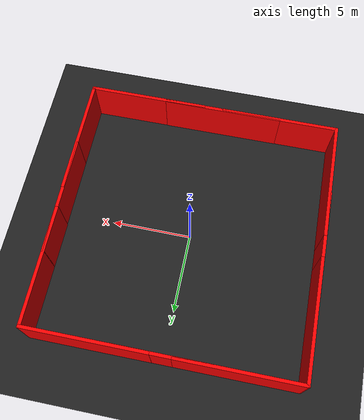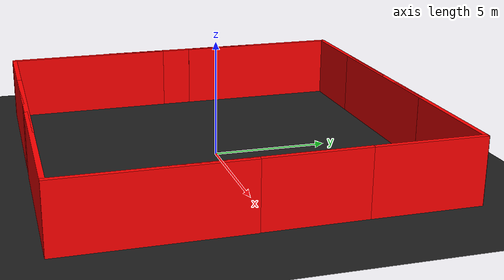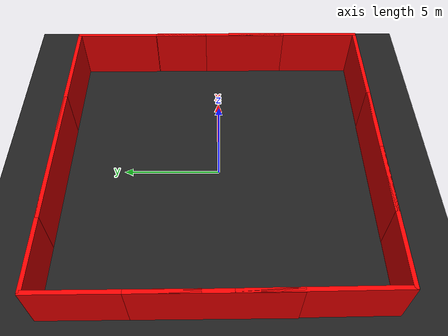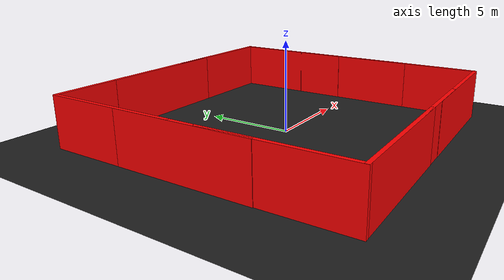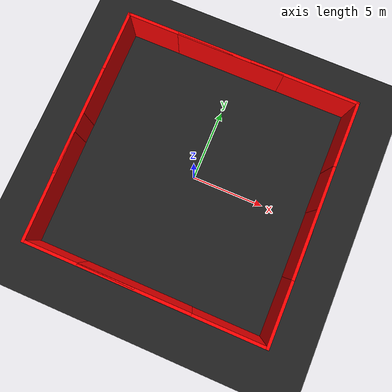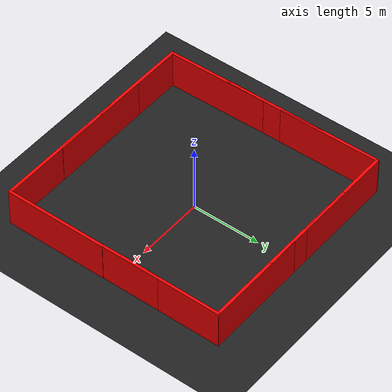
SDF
<sdf version="1.4">
 <world name="default">
  <light name="sun" type="directional">
   <pose>0 0 10 0 -0 0</pose>
   <diffuse>0.8 0.8 0.8 1</diffuse>
   <specular>0.2 0.2 0.2 1</specular>
   <attenuation>
    <range>1000</range>
    <constant>0.9</constant>
    <linear>0.01</linear>
    <quadratic>0.001</quadratic>
   </attenuation>
   <direction>-0.5 0.1 -0.9</direction>
  </light>
  <model name="ground_plane">
   <static>1</static>
   <link name="link">
    <collision name="collision">
     <geometry><plane><normal>0 0 1</normal><size>100 100</size></plane></geometry>
     <surface><friction><ode><mu>100</mu><mu2>50</mu2></ode></friction></surface>
    </collision>
    <visual name="visual">
     <cast_shadows>0</cast_shadows>
     <geometry><plane><normal>0 0 1</normal><size>100 100</size></plane></geometry>
     <material>
      <script><uri>file://media/materials/scripts/gazebo.material</uri><name>Gazebo/Black</name></script>
     </material>
    </visual>
    <velocity_decay><linear>0</linear><angular>0</angular></velocity_decay>
   </link>
  </model>
  <physics type="ode">
   <max_step_size>0.001</max_step_size>
   <real_time_factor>1</real_time_factor>
   <real_time_update_rate>1000</real_time_update_rate>
   <gravity>0 0 -9.8</gravity>
  </physics>
  <scene><ambient>0 0 0 1</ambient><background>0 0 0 1</background><shadows>0</shadows></scene>
  <model name="grey_wall">
   <static>1</static>
   <link name="link">
    <pose>0 0 1.4 0 -0 0</pose>
    <collision name="collision"><geometry><box><size>7.5 0.2 2.8</size></box></geometry></collision>
    <visual name="visual">
     <cast_shadows>0</cast_shadows>
     <geometry><box><size>7.5 0.2 2.8</size></box></geometry>
     <material>
      <ambient>1 0 0 1</ambient>
      <diffuse>1 0 0 1</diffuse>
      <specular>1 0 0 1</specular>
      <emissive>1 0 0 1</emissive>
     </material>
    </visual>
    <velocity_decay><linear>0</linear><angular>0</angular></velocity_decay>
   </link>
   <pose>-4.3622 8.13739 0 0 -0 0</pose>
  </model>
  <model name="grey_wall_0">
   <static>1</static>
   <link name="link">
    <pose>0 0 1.4 0 -0 0</pose>
    <collision name="collision"><geometry><box><size>7.5 0.2 2.8</size></box></geometry></collision>
    <visual name="visual">
     <cast_shadows>0</cast_shadows>
     <geometry><box><size>7.5 0.2 2.8</size></box></geometry>
     <material>
      <ambient>1 0 0 1</ambient>
      <diffuse>1 0 0 1</diffuse>
      <specular>1 0 0 1</specular>
      <emissive>1 0 0 1</emissive>
     </material>
    </visual>
    <velocity_decay><linear>0</linear><angular>0</angular></velocity_decay>
   </link>
   <pose>-0.796756 8.13697 0 0 -0 0</pose>
  </model>
  <model name="grey_wall_1">
   <static>1</static>
   <link name="link">
    <pose>0 0 1.4 0 -0 0</pose>
    <collision name="collision"><geometry><box><size>7.5 0.2 2.8</size></box></geometry></collision>
    <visual name="visual">
     <cast_shadows>0</cast_shadows>
     <geometry><box><size>7.5 0.2 2.8</size></box></geometry>
     <material>
      <ambient>1 0 0 1</ambient>
      <diffuse>1 0 0 1</diffuse>
      <specular>1 0 0 1</specular>
      <emissive>1 0 0 1</emissive>
     </material>
    </visual>
    <velocity_decay><linear>0</linear><angular>0</angular></velocity_decay>
   </link>
   <pose>4.37386 8.14275 0 0 -0 0</pose>
  </model>
  <model name="grey_wall_2">
   <static>1</static>
   <link name="link">
    <pose>0 0 1.4 0 -0 0</pose>
    <collision name="collision"><geometry><box><size>7.5 0.2 2.8</size></box></geometry></collision>
    <visual name="visual">
     <cast_shadows>0</cast_shadows>
     <geometry><box><size>7.5 0.2 2.8</size></box></geometry>
     <material>
      <ambient>1 0 0 1</ambient>
      <diffuse>1 0 0 1</diffuse>
      <specular>1 0 0 1</specular>
      <emissive>1 0 0 1</emissive>
     </material>
    </visual>
    <velocity_decay><linear>0</linear><angular>0</angular></velocity_decay>
   </link>
   <pose>-4.23424 -8.02129 0 0 -0 0</pose>
  </model>
  <model name="grey_wall_3">
   <static>1</static>
   <link name="link">
    <pose>0 0 1.4 0 -0 0</pose>
    <collision name="collision"><geometry><box><size>7.5 0.2 2.8</size></box></geometry></collision>
    <visual name="visual">
     <cast_shadows>0</cast_shadows>
     <geometry><box><size>7.5 0.2 2.8</size></box></geometry>
     <material>
      <ambient>1 0 0 1</ambient>
      <diffuse>1 0 0 1</diffuse>
      <specular>1 0 0 1</specular>
      <emissive>1 0 0 1</emissive>
     </material>
    </visual>
    <velocity_decay><linear>0</linear><angular>0</angular></velocity_decay>
   </link>
   <pose>-0.524266 -8.01227 0 0 -0 0</pose>
  </model>
  <model name="grey_wall_4">
   <static>1</static>
   <link name="link">
    <pose>0 0 1.4 0 -0 0</pose>
    <collision name="collision"><geometry><box><size>7.5 0.2 2.8</size></box></geometry></collision>
    <visual name="visual">
     <cast_shadows>0</cast_shadows>
     <geometry><box><size>7.5 0.2 2.8</size></box></geometry>
     <material>
      <ambient>1 0 0 1</ambient>
      <diffuse>1 0 0 1</diffuse>
      <specular>1 0 0 1</specular>
      <emissive>1 0 0 1</emissive>
     </material>
    </visual>
    <velocity_decay><linear>0</linear><angular>0</angular></velocity_decay>
   </link>
   <pose>4.37951 -8.02528 0 0 -0 0</pose>
  </model>
  <model name="grey_wall_5">
   <static>1</static>
   <link name="link">
    <pose>0 0 1.4 0 -0 0</pose>
    <collision name="collision"><geometry><box><size>7.5 0.2 2.8</size></box></geometry></collision>
    <visual name="visual">
     <cast_shadows>0</cast_shadows>
     <geometry><box><size>7.5 0.2 2.8</size></box></geometry>
     <material>
      <ambient>1 0 0 1</ambient>
      <diffuse>1 0 0 1</diffuse>
      <specular>1 0 0 1</specular>
      <emissive>1 0 0 1</emissive>
     </material>
    </visual>
    <velocity_decay><linear>0</linear><angular>0</angular></velocity_decay>
   </link>
   <pose>8.0756 -4.36598 0 0 0 -1.57076</pose>
  </model>
  <model name="grey_wall_6">
   <static>1</static>
   <link name="link">
    <pose>0 0 1.4 0 -0 0</pose>
    <collision name="collision"><geometry><box><size>7.5 0.2 2.8</size></box></geometry></collision>
    <visual name="visual">
     <cast_shadows>0</cast_shadows>
     <geometry><box><size>7.5 0.2 2.8</size></box></geometry>
     <material>
      <ambient>1 0 0 1</ambient>
      <diffuse>1 0 0 1</diffuse>
      <specular>1 0 0 1</specular>
      <emissive>1 0 0 1</emissive>
     </material>
    </visual>
    <velocity_decay><linear>0</linear><angular>0</angular></velocity_decay>
   </link>
   <pose>8.04978 -0.089718 0 0 -0 1.57597</pose>
  </model>
  <model name="grey_wall_8">
   <static>1</static>
   <link name="link">
    <pose>0 0 1.4 0 -0 0</pose>
    <collision name="collision"><geometry><box><size>7.5 0.2 2.8</size></box></geometry></collision>
    <visual name="visual">
     <cast_shadows>0</cast_shadows>
     <geometry><box><size>7.5 0.2 2.8</size></box></geometry>
     <material>
      <ambient>1 0 0 1</ambient>
      <diffuse>1 0 0 1</diffuse>
      <specular>1 0 0 1</specular>
      <emissive>1 0 0 1</emissive>
     </material>
    </visual>
    <velocity_decay><linear>0</linear><angular>0</angular></velocity_decay>
   </link>
   <pose>-8.05702 4.47045 0 0 -0 1.57949</pose>
  </model>
  <model name="grey_wall_9">
   <static>1</static>
   <link name="link">
    <pose>0 0 1.4 0 -0 0</pose>
    <collision name="collision"><geometry><box><size>7.5 0.2 2.8</size></box></geometry></collision>
    <visual name="visual">
     <cast_shadows>0</cast_shadows>
     <geometry><box><size>7.5 0.2 2.8</size></box></geometry>
     <material>
      <ambient>1 0 0 1</ambient>
      <diffuse>1 0 0 1</diffuse>
      <specular>1 0 0 1</specular>
      <emissive>1 0 0 1</emissive>
     </material>
    </visual>
    <velocity_decay><linear>0</linear><angular>0</angular></velocity_decay>
   </link>
   <pose>-8.02806 0.22296 0 0 0 -1.56319</pose>
  </model>
  <spherical_coordinates>
   <surface_model>EARTH_WGS84</surface_model>
   <latitude_deg>0</latitude_deg>
   <longitude_deg>0</longitude_deg>
   <elevation>0</elevation>
   <heading_deg>0</heading_deg>
  </spherical_coordinates>
  <model name="grey_wall_11">
   <static>1</static>
   <link name="link">
    <pose>0 0 1.4 0 -0 0</pose>
    <collision name="collision"><geometry><box><size>7.5 0.2 2.8</size></box></geometry></collision>
    <visual name="visual">
     <cast_shadows>0</cast_shadows>
     <geometry><box><size>7.5 0.2 2.8</size></box></geometry>
     <material>
      <ambient>1 0 0 1</ambient>
      <diffuse>1 0 0 1</diffuse>
      <specular>1 0 0 1</specular>
      <emissive>1 0 0 1</emissive>
     </material>
    </visual>
    <velocity_decay><linear>0</linear><angular>0</angular></velocity_decay>
   </link>
   <pose>-7.95731 -4.37677 0 0 0 -1.5551</pose>
  </model>
  <model name="grey_wall_13">
   <static>1</static>
   <link name="link">
    <pose>0 0 1.4 0 -0 0</pose>
    <collision name="collision"><geometry><box><size>7.5 0.2 2.8</size></box></geometry></collision>
    <visual name="visual">
     <cast_shadows>0</cast_shadows>
     <geometry><box><size>7.5 0.2 2.8</size></box></geometry>
     <material>
      <ambient>1 0 0 1</ambient>
      <diffuse>1 0 0 1</diffuse>
      <specular>1 0 0 1</specular>
      <emissive>1 0 0 1</emissive>
     </material>
    </visual>
    <velocity_decay><linear>0</linear><angular>0</angular></velocity_decay>
   </link>
   <pose>8.03151 4.47084 0 0 -0 1.56962</pose>
  </model>
 </world>
</sdf>
